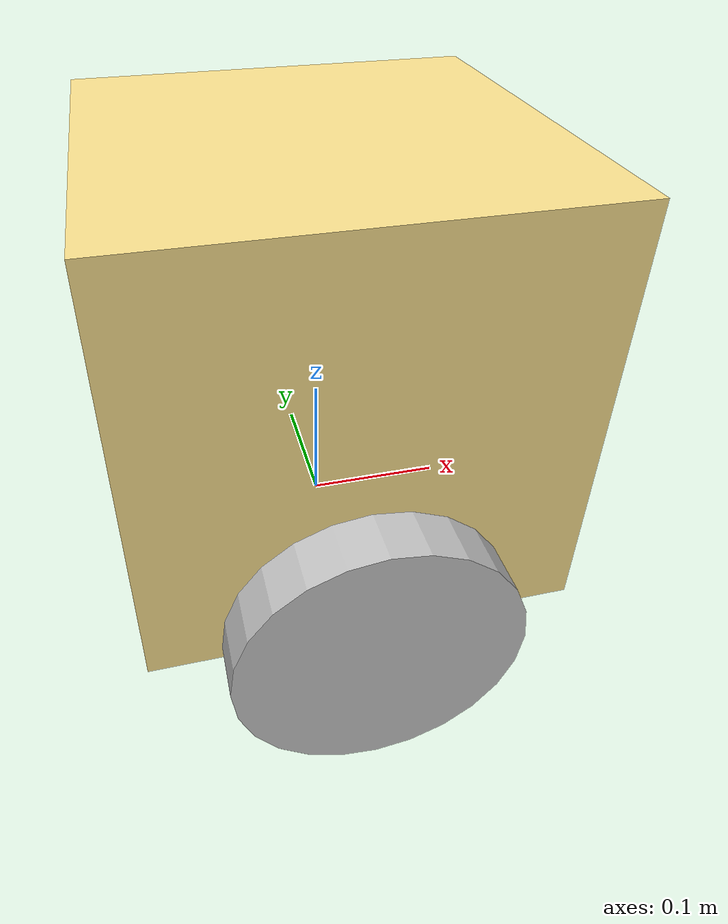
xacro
<?xml version="1.0"?>
<robot name="artbox" xmlns:xacro="http://www.ros.org/wiki/xacro">

  <xacro:property name="box_length" value="0.3"/>
  <xacro:property name="box_width" value="0.3"/>
  <xacro:property name="box_height" value="0.3"/>
  <xacro:property name="wheel_base" value="0.325"/>
  <xacro:property name="wheel_raise" value="0.01"/>
  <xacro:property name="wheel_radius" value="0.1"/>
  <xacro:property name="wheel_width" value="0.05"/>

  <material name="artbox_body">
    <color rgba="0.96 0.863 0.545 1.0"/>
  </material>

  <material name="artbox_wheel">
    <color rgba="0.756 0.756 0.756 1.0"/>
  </material>

  <link name="base_link">
    <visual>
      <origin xyz="0 0 ${box_height / 2.0}" rpy="0 0 0"/>
      <geometry>
        <box size="${box_length} ${box_width} ${box_height}"/>
      </geometry>
      <material name="artbox_body"/>
    </visual>
    <collision>
      <origin xyz="0 0 ${box_height / 2.0}" rpy="0 0 0"/>
      <geometry>
        <box size="${box_length} ${box_width} ${box_height}"/>
      </geometry>
    </collision>
    <inertial>
      <origin xyz="0 0 ${box_height / 2.0}" rpy="0 0 0"/>
      <mass value="5.0"/>
      <inertia ixx="0.05" ixy="0.0" ixz="0.0" iyy="0.05" iyz="0.0" izz="0.05"/>
    </inertial>
  </link>

  <link name="left_wheel_link">
    <visual>
      <origin xyz="0 0 0" rpy="1.5708 0 0"/>
      <geometry>
        <cylinder radius="${wheel_radius}" length="${wheel_width}"/>
      </geometry>
      <material name="artbox_wheel"/>
    </visual>
  </link>

  <link name="right_wheel_link">
    <visual>
      <origin xyz="0 0 0" rpy="1.5708 0 0"/>
      <geometry>
        <cylinder radius="${wheel_radius}" length="${wheel_width}"/>
      </geometry>
      <material name="artbox_wheel"/>
    </visual>
  </link>

  <joint name="left_wheel_joint" type="continuous">
    <origin xyz="0 ${wheel_base / 2.0} ${wheel_raise}" rpy="0 0 0"/>
    <parent link="base_link"/>
    <child link="left_wheel_link"/>
    <axis xyz="0 1 0"/>
  </joint>

  <joint name="right_wheel_joint" type="continuous">
    <origin xyz="0 ${-wheel_base / 2.0} ${wheel_raise}" rpy="0 0 0"/>
    <parent link="base_link"/>
    <child link="right_wheel_link"/>
    <axis xyz="0 1 0"/>
  </joint>

  <ros2_control name="ArtboxSystem" type="system">
    <hardware>
      <plugin>artbox_robot/ArtboxHardwareInterface</plugin>
      <param name="serial_port">/dev/ttyACM0</param>
      <param name="baud_rate">115200</param>
      <param name="ticks_per_rev">2048</param>
      <param name="wheel_radius">${wheel_radius}</param>
    </hardware>

    <joint name="left_wheel_joint">
      <command_interface name="velocity"/>
      <state_interface name="position"/>
      <state_interface name="velocity"/>
    </joint>

    <joint name="right_wheel_joint">
      <command_interface name="velocity"/>
      <state_interface name="position"/>
      <state_interface name="velocity"/>
    </joint>
  </ros2_control>

</robot>
